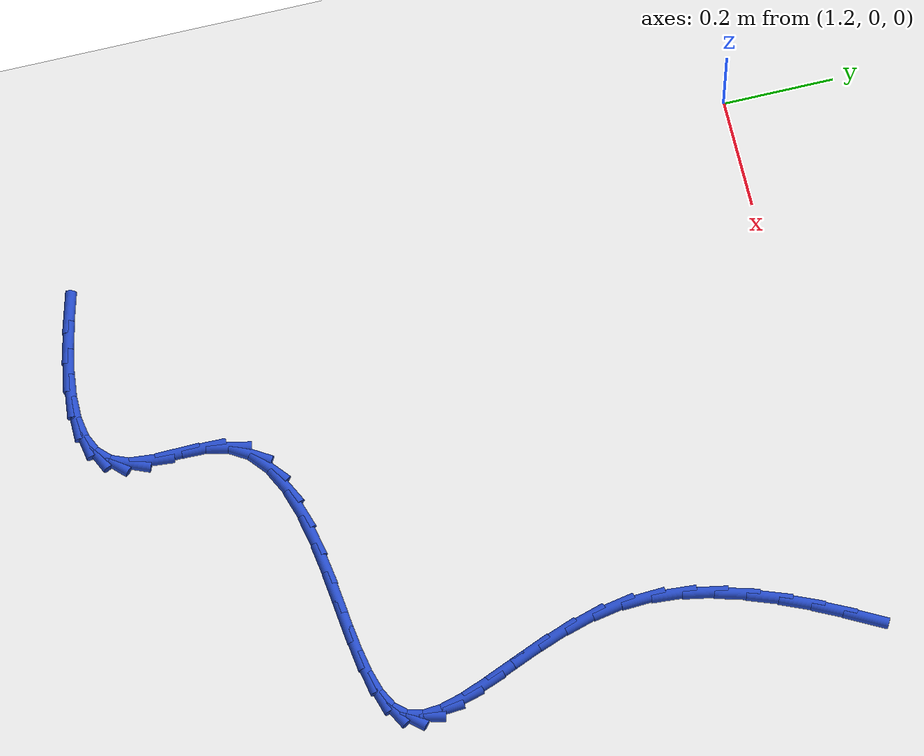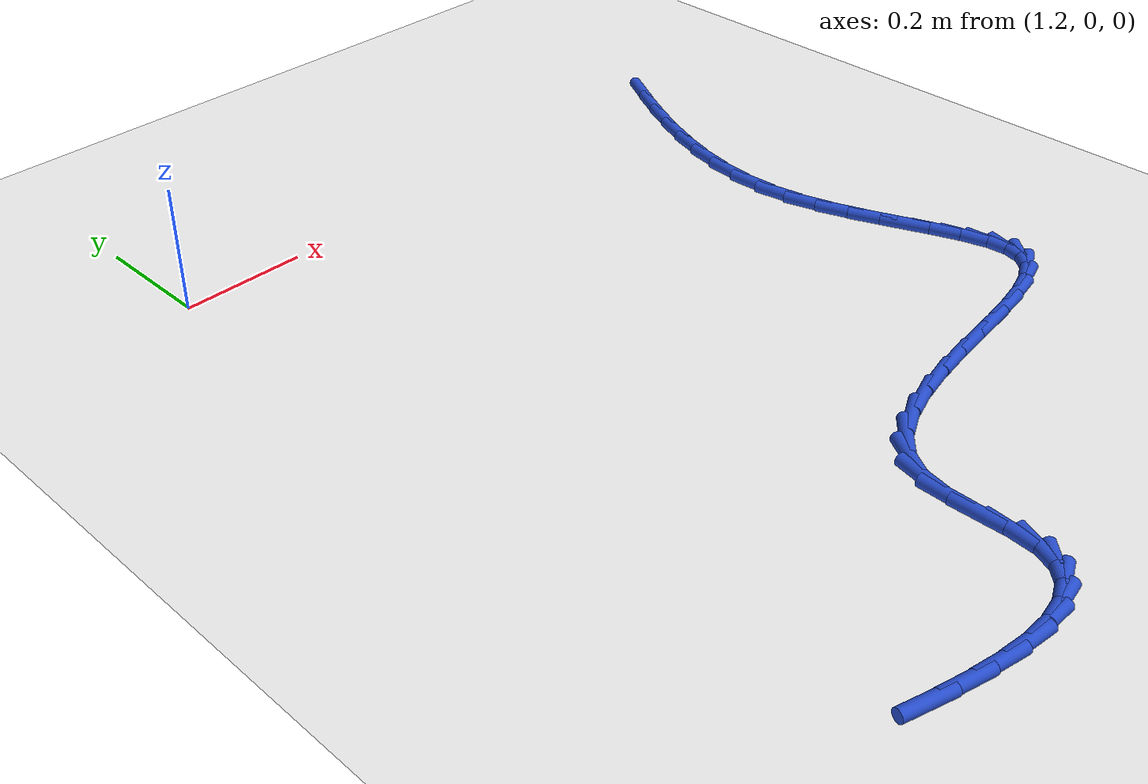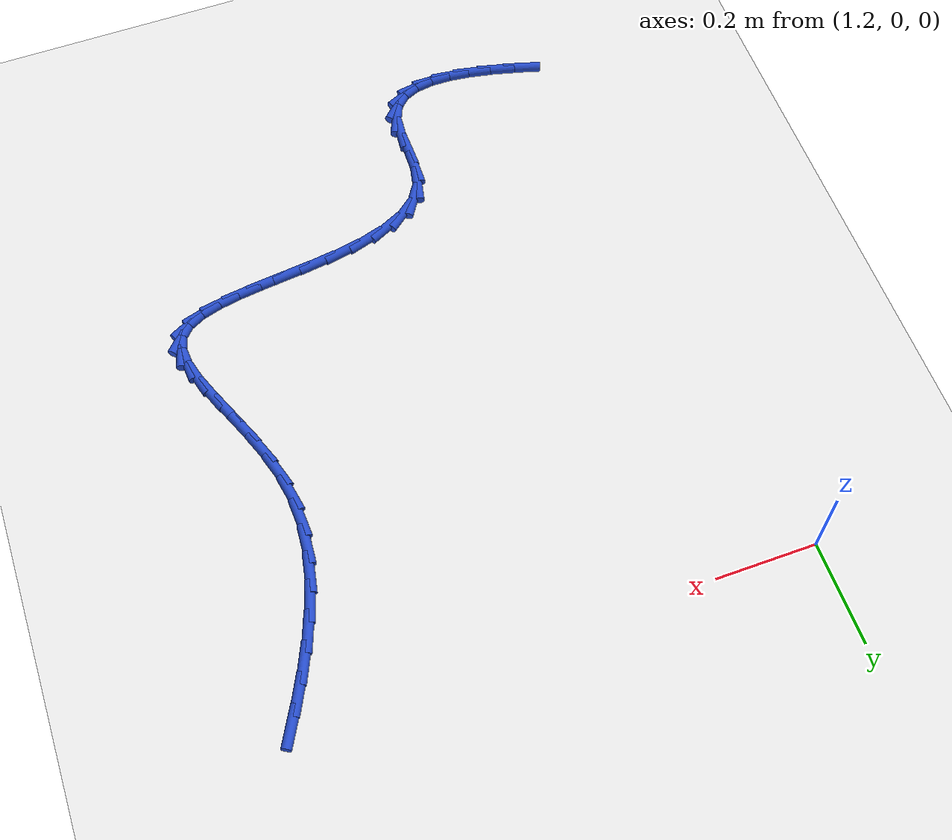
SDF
<sdf version="1.6">
 <world name="default">
  <model name="ground_plane">
   <static>1</static>
   <link name="link">
    <collision name="collision">
     <geometry><plane><normal>0 0 1</normal><size>100 100</size></plane></geometry>
     <surface><friction><ode><mu>100</mu><mu2>50</mu2></ode></friction></surface>
    </collision>
    <visual name="visual">
     <cast_shadows>0</cast_shadows>
     <geometry><plane><normal>0 0 1</normal><size>100 100</size></plane></geometry>
     <material>
      <script><uri>file://media/materials/scripts/gazebo.material</uri><name>Gazebo/WhiteGlow</name></script>
     </material>
    </visual>
   </link>
  </model>
  <model name="line">
   <link name="link_86">
    <pose>2.1945463842603115 -0.000606366182862722 0.01 0 1.57 1.0730740660798603</pose>
    <collision name="collision">
     <geometry><cylinder><radius>0.01</radius><length>0.08</length></cylinder></geometry>
    </collision>
    <visual name="visual">
     <material>
      <script><name>Gazebo/Blue</name><uri>file://media/materials/scripts/gazebo.material</uri></script>
     </material>
     <geometry><cylinder><radius>0.01</radius><length>0.08</length></cylinder></geometry>
    </visual>
   </link>
   <link name="link_87">
    <pose>2.167419787983631 -0.050531210718510064 0.01 0 1.57 1.1085020541007886</pose>
    <collision name="collision">
     <geometry><cylinder><radius>0.01</radius><length>0.08</length></cylinder></geometry>
    </collision>
    <visual name="visual">
     <material>
      <script><name>Gazebo/Blue</name><uri>file://media/materials/scripts/gazebo.material</uri></script>
     </material>
     <geometry><cylinder><radius>0.01</radius><length>0.08</length></cylinder></geometry>
    </visual>
   </link>
   <link name="link_88">
    <pose>2.1420147132523484 -0.10151373489827858 0.01 0 1.57 1.1560751038383181</pose>
    <collision name="collision">
     <geometry><cylinder><radius>0.01</radius><length>0.08</length></cylinder></geometry>
    </collision>
    <visual name="visual">
     <material>
      <script><name>Gazebo/Blue</name><uri>file://media/materials/scripts/gazebo.material</uri></script>
     </material>
     <geometry><cylinder><radius>0.01</radius><length>0.08</length></cylinder></geometry>
    </visual>
   </link>
   <link name="link_89">
    <pose>2.1191820332986784 -0.15337603019349053 0.01 0 1.57 1.2170746392446472</pose>
    <collision name="collision">
     <geometry><cylinder><radius>0.01</radius><length>0.08</length></cylinder></geometry>
    </collision>
    <visual name="visual">
     <material>
      <script><name>Gazebo/Blue</name><uri>file://media/materials/scripts/gazebo.material</uri></script>
     </material>
     <geometry><cylinder><radius>0.01</radius><length>0.08</length></cylinder></geometry>
    </visual>
   </link>
   <link name="link_90">
    <pose>2.099772621354834 -0.2059401880754652 0.01 0 1.57 1.2930672977358457</pose>
    <collision name="collision">
     <geometry><cylinder><radius>0.01</radius><length>0.08</length></cylinder></geometry>
    </collision>
    <visual name="visual">
     <material>
      <script><name>Gazebo/Blue</name><uri>file://media/materials/scripts/gazebo.material</uri></script>
     </material>
     <geometry><cylinder><radius>0.01</radius><length>0.08</length></cylinder></geometry>
    </visual>
   </link>
   <link name="link_91">
    <pose>2.084637350653027 -0.2590283000155247 0.01 0 1.57 1.3856047342201527</pose>
    <collision name="collision">
     <geometry><cylinder><radius>0.01</radius><length>0.08</length></cylinder></geometry>
    </collision>
    <visual name="visual">
     <material>
      <script><name>Gazebo/Blue</name><uri>file://media/materials/scripts/gazebo.material</uri></script>
     </material>
     <geometry><cylinder><radius>0.01</radius><length>0.08</length></cylinder></geometry>
    </visual>
   </link>
   <link name="link_92">
    <pose>2.0746270944254714 -0.3124624574849904 0.01 0 1.57 1.4956731181866083</pose>
    <collision name="collision">
     <geometry><cylinder><radius>0.01</radius><length>0.08</length></cylinder></geometry>
    </collision>
    <visual name="visual">
     <material>
      <script><name>Gazebo/Blue</name><uri>file://media/materials/scripts/gazebo.material</uri></script>
     </material>
     <geometry><cylinder><radius>0.01</radius><length>0.08</length></cylinder></geometry>
    </visual>
   </link>
   <link name="link_93">
    <pose>2.0705927259043793 -0.3660647519551835 0.01 0 1.57 -1.518739259783545</pose>
    <collision name="collision">
     <geometry><cylinder><radius>0.01</radius><length>0.08</length></cylinder></geometry>
    </collision>
    <visual name="visual">
     <material>
      <script><name>Gazebo/Blue</name><uri>file://media/materials/scripts/gazebo.material</uri></script>
     </material>
     <geometry><cylinder><radius>0.01</radius><length>0.08</length></cylinder></geometry>
    </visual>
   </link>
   <link name="link_94">
    <pose>2.073385118321964 -0.4196572748974262 0.01 0 1.57 -1.3842314266280167</pose>
    <collision name="collision">
     <geometry><cylinder><radius>0.01</radius><length>0.08</length></cylinder></geometry>
    </collision>
    <visual name="visual">
     <material>
      <script><name>Gazebo/Blue</name><uri>file://media/materials/scripts/gazebo.material</uri></script>
     </material>
     <geometry><cylinder><radius>0.01</radius><length>0.08</length></cylinder></geometry>
    </visual>
   </link>
   <link name="link_95">
    <pose>2.083453334374931 -0.4729959848737925 0.01 0 1.57 -1.279418233602411</pose>
    <collision name="collision">
     <geometry><cylinder><radius>0.01</radius><length>0.08</length></cylinder></geometry>
    </collision>
    <visual name="visual">
     <material>
      <script><name>Gazebo/Blue</name><uri>file://media/materials/scripts/gazebo.material</uri></script>
     </material>
     <geometry><cylinder><radius>0.01</radius><length>0.08</length></cylinder></geometry>
    </visual>
   </link>
   <link name="link_96">
    <pose>2.099200044052732 -0.5255000302056368 0.01 0 1.57 -1.2109950455202845</pose>
    <collision name="collision">
     <geometry><cylinder><radius>0.01</radius><length>0.08</length></cylinder></geometry>
    </collision>
    <visual name="visual">
     <material>
      <script><name>Gazebo/Blue</name><uri>file://media/materials/scripts/gazebo.material</uri></script>
     </material>
     <geometry><cylinder><radius>0.01</radius><length>0.08</length></cylinder></geometry>
    </visual>
   </link>
   <link name="link_97">
    <pose>2.1183780889790813 -0.5764816057212141 0.01 0 1.57 -1.175296134099487</pose>
    <collision name="collision">
     <geometry><cylinder><radius>0.01</radius><length>0.08</length></cylinder></geometry>
    </collision>
    <visual name="visual">
     <material>
      <script><name>Gazebo/Blue</name><uri>file://media/materials/scripts/gazebo.material</uri></script>
     </material>
     <geometry><cylinder><radius>0.01</radius><length>0.08</length></cylinder></geometry>
    </visual>
   </link>
   <link name="link_98">
    <pose>2.1387400441845634 -0.6252528623709367 0.01 0 1.57 -1.1725802625752417</pose>
    <collision name="collision">
     <geometry><cylinder><radius>0.01</radius><length>0.08</length></cylinder></geometry>
    </collision>
    <visual name="visual">
     <material>
      <script><name>Gazebo/Blue</name><uri>file://media/materials/scripts/gazebo.material</uri></script>
     </material>
     <geometry><cylinder><radius>0.01</radius><length>0.08</length></cylinder></geometry>
    </visual>
   </link>
   <link name="link_99">
    <pose>2.158038484699765 -0.6711259511052188 0.01 0 1.57 -1.209336298281432</pose>
    <collision name="collision">
     <geometry><cylinder><radius>0.01</radius><length>0.08</length></cylinder></geometry>
    </collision>
    <visual name="visual">
     <material>
      <script><name>Gazebo/Blue</name><uri>file://media/materials/scripts/gazebo.material</uri></script>
     </material>
     <geometry><cylinder><radius>0.01</radius><length>0.08</length></cylinder></geometry>
    </visual>
   </link>
   <link name="link_100">
    <pose>2.1740259855552693 -0.7134130228744712 0.01 0 1.57 -1.3030292994326418</pose>
    <collision name="collision">
     <geometry><cylinder><radius>0.01</radius><length>0.08</length></cylinder></geometry>
    </collision>
    <visual name="visual">
     <material>
      <script><name>Gazebo/Blue</name><uri>file://media/materials/scripts/gazebo.material</uri></script>
     </material>
     <geometry><cylinder><radius>0.01</radius><length>0.08</length></cylinder></geometry>
    </visual>
   </link>
   <link name="link_101">
    <pose>2.184455121781663 -0.7514262286291075 0.01 0 1.57 -1.4915908683314771</pose>
    <collision name="collision">
     <geometry><cylinder><radius>0.01</radius><length>0.08</length></cylinder></geometry>
    </collision>
    <visual name="visual">
     <material>
      <script><name>Gazebo/Blue</name><uri>file://media/materials/scripts/gazebo.material</uri></script>
     </material>
     <geometry><cylinder><radius>0.01</radius><length>0.08</length></cylinder></geometry>
    </visual>
   </link>
   <link name="link_102">
    <pose>2.1870784684095304 -0.7844777193195405 0.01 0 1.57 1.3060185319753976</pose>
    <collision name="collision">
     <geometry><cylinder><radius>0.01</radius><length>0.08</length></cylinder></geometry>
    </collision>
    <visual name="visual">
     <material>
      <script><name>Gazebo/Blue</name><uri>file://media/materials/scripts/gazebo.material</uri></script>
     </material>
     <geometry><cylinder><radius>0.01</radius><length>0.08</length></cylinder></geometry>
    </visual>
   </link>
   <link name="link_103">
    <pose>2.1796486004694566 -0.8118796458961829 0.01 0 1.57 0.8317705952721794</pose>
    <collision name="collision">
     <geometry><cylinder><radius>0.01</radius><length>0.08</length></cylinder></geometry>
    </collision>
    <visual name="visual">
     <material>
      <script><name>Gazebo/Blue</name><uri>file://media/materials/scripts/gazebo.material</uri></script>
     </material>
     <geometry><cylinder><radius>0.01</radius><length>0.08</length></cylinder></geometry>
    </visual>
   </link>
   <link name="link_104">
    <pose>2.1602987668952647 -0.8331127595565482 0.01 0 1.57 0.4771071912038997</pose>
    <collision name="collision">
     <geometry><cylinder><radius>0.01</radius><length>0.08</length></cylinder></geometry>
    </collision>
    <visual name="visual">
     <material>
      <script><name>Gazebo/Blue</name><uri>file://media/materials/scripts/gazebo.material</uri></script>
     </material>
     <geometry><cylinder><radius>0.01</radius><length>0.08</length></cylinder></geometry>
    </visual>
   </link>
   <link name="link_105">
    <pose>2.129854897404962 -0.8488503982284561 0.01 0 1.57 0.28132576874966747</pose>
    <collision name="collision">
     <geometry><cylinder><radius>0.01</radius><length>0.08</length></cylinder></geometry>
    </collision>
    <visual name="visual">
     <material>
      <script><name>Gazebo/Blue</name><uri>file://media/materials/scripts/gazebo.material</uri></script>
     </material>
     <geometry><cylinder><radius>0.01</radius><length>0.08</length></cylinder></geometry>
    </visual>
   </link>
   <link name="link_106">
    <pose>2.09030411192006 -0.8602801902956166 0.01 0 1.57 0.17625983426204944</pose>
    <collision name="collision">
     <geometry><cylinder><radius>0.01</radius><length>0.08</length></cylinder></geometry>
    </collision>
    <visual name="visual">
     <material>
      <script><name>Gazebo/Blue</name><uri>file://media/materials/scripts/gazebo.material</uri></script>
     </material>
     <geometry><cylinder><radius>0.01</radius><length>0.08</length></cylinder></geometry>
    </visual>
   </link>
   <link name="link_107">
    <pose>2.0436380970620003 -0.8685917867304436 0.01 0 1.57 0.12263133509250113</pose>
    <collision name="collision">
     <geometry><cylinder><radius>0.01</radius><length>0.08</length></cylinder></geometry>
    </collision>
    <visual name="visual">
     <material>
      <script><name>Gazebo/Blue</name><uri>file://media/materials/scripts/gazebo.material</uri></script>
     </material>
     <geometry><cylinder><radius>0.01</radius><length>0.08</length></cylinder></geometry>
    </visual>
   </link>
   <link name="link_108">
    <pose>1.991848539452224 -0.8749748385053504 0.01 0 1.57 0.10240838503690754</pose>
    <collision name="collision">
     <geometry><cylinder><radius>0.01</radius><length>0.08</length></cylinder></geometry>
    </collision>
    <visual name="visual">
     <material>
      <script><name>Gazebo/Blue</name><uri>file://media/materials/scripts/gazebo.material</uri></script>
     </material>
     <geometry><cylinder><radius>0.01</radius><length>0.08</length></cylinder></geometry>
    </visual>
   </link>
   <link name="link_109">
    <pose>1.9369271257121725 -0.8806189965927509 0.01 0 1.57 0.10829289213533846</pose>
    <collision name="collision">
     <geometry><cylinder><radius>0.01</radius><length>0.08</length></cylinder></geometry>
    </collision>
    <visual name="visual">
     <material>
      <script><name>Gazebo/Blue</name><uri>file://media/materials/scripts/gazebo.material</uri></script>
     </material>
     <geometry><cylinder><radius>0.01</radius><length>0.08</length></cylinder></geometry>
    </visual>
   </link>
   <link name="link_110">
    <pose>1.880865542463286 -0.8867139119650588 0.01 0 1.57 0.13920100551002376</pose>
    <collision name="collision">
     <geometry><cylinder><radius>0.01</radius><length>0.08</length></cylinder></geometry>
    </collision>
    <visual name="visual">
     <material>
      <script><name>Gazebo/Blue</name><uri>file://media/materials/scripts/gazebo.material</uri></script>
     </material>
     <geometry><cylinder><radius>0.01</radius><length>0.08</length></cylinder></geometry>
    </visual>
   </link>
   <link name="link_111">
    <pose>1.8256554763270074 -0.8944492355946875 0.01 0 1.57 0.1990844437430704</pose>
    <collision name="collision">
     <geometry><cylinder><radius>0.01</radius><length>0.08</length></cylinder></geometry>
    </collision>
    <visual name="visual">
     <material>
      <script><name>Gazebo/Blue</name><uri>file://media/materials/scripts/gazebo.material</uri></script>
     </material>
     <geometry><cylinder><radius>0.01</radius><length>0.08</length></cylinder></geometry>
    </visual>
   </link>
   <link name="link_112">
    <pose>1.773288613924777 -0.9050146184540502 0.01 0 1.57 0.297727510294519</pose>
    <collision name="collision">
     <geometry><cylinder><radius>0.01</radius><length>0.08</length></cylinder></geometry>
    </collision>
    <visual name="visual">
     <material>
      <script><name>Gazebo/Blue</name><uri>file://media/materials/scripts/gazebo.material</uri></script>
     </material>
     <geometry><cylinder><radius>0.01</radius><length>0.08</length></cylinder></geometry>
    </visual>
   </link>
   <link name="link_113">
    <pose>1.7257566418780357 -0.919599711515561 0.01 0 1.57 0.4526161519391164</pose>
    <collision name="collision">
     <geometry><cylinder><radius>0.01</radius><length>0.08</length></cylinder></geometry>
    </collision>
    <visual name="visual">
     <material>
      <script><name>Gazebo/Blue</name><uri>file://media/materials/scripts/gazebo.material</uri></script>
     </material>
     <geometry><cylinder><radius>0.01</radius><length>0.08</length></cylinder></geometry>
    </visual>
   </link>
   <link name="link_114">
    <pose>1.6850512468082244 -0.9393941657516331 0.01 0 1.57 0.687679973335966</pose>
    <collision name="collision">
     <geometry><cylinder><radius>0.01</radius><length>0.08</length></cylinder></geometry>
    </collision>
    <visual name="visual">
     <material>
      <script><name>Gazebo/Blue</name><uri>file://media/materials/scripts/gazebo.material</uri></script>
     </material>
     <geometry><cylinder><radius>0.01</radius><length>0.08</length></cylinder></geometry>
    </visual>
   </link>
   <link name="link_115">
    <pose>1.6531641153367844 -0.9655876321346811 0.01 0 1.57 1.0129775330760804</pose>
    <collision name="collision">
     <geometry><cylinder><radius>0.01</radius><length>0.08</length></cylinder></geometry>
    </collision>
    <visual name="visual">
     <material>
      <script><name>Gazebo/Blue</name><uri>file://media/materials/scripts/gazebo.material</uri></script>
     </material>
     <geometry><cylinder><radius>0.01</radius><length>0.08</length></cylinder></geometry>
    </visual>
   </link>
   <link name="link_116">
    <pose>1.632086934085158 -0.9993697616371175 0.01 0 1.57 1.3605635354170675</pose>
    <collision name="collision">
     <geometry><cylinder><radius>0.01</radius><length>0.08</length></cylinder></geometry>
    </collision>
    <visual name="visual">
     <material>
      <script><name>Gazebo/Blue</name><uri>file://media/materials/scripts/gazebo.material</uri></script>
     </material>
     <geometry><cylinder><radius>0.01</radius><length>0.08</length></cylinder></geometry>
    </visual>
   </link>
   <link name="link_117">
    <pose>1.6231199096495845 -1.041392349122935 0.01 0 1.57 1.553132958315199</pose>
    <collision name="collision">
     <geometry><cylinder><radius>0.01</radius><length>0.08</length></cylinder></geometry>
    </collision>
    <visual name="visual">
     <material>
      <script><name>Gazebo/Blue</name><uri>file://media/materials/scripts/gazebo.material</uri></script>
     </material>
     <geometry><cylinder><radius>0.01</radius><length>0.08</length></cylinder></geometry>
    </visual>
   </link>
   <link name="link_118">
    <pose>1.622292906103181 -1.088207742160149 0.01 0 1.57 -1.5509893236732117</pose>
    <collision name="collision">
     <geometry><cylinder><radius>0.01</radius><length>0.08</length></cylinder></geometry>
    </collision>
    <visual name="visual">
     <material>
      <script><name>Gazebo/Blue</name><uri>file://media/materials/scripts/gazebo.material</uri></script>
     </material>
     <geometry><cylinder><radius>0.01</radius><length>0.08</length></cylinder></geometry>
    </visual>
   </link>
   <link name="link_119">
    <pose>1.623209562321865 -1.1344810898509339 0.01 0 1.57 1.478369526519121</pose>
    <collision name="collision">
     <geometry><cylinder><radius>0.01</radius><length>0.08</length></cylinder></geometry>
    </collision>
    <visual name="visual">
     <material>
      <script><name>Gazebo/Blue</name><uri>file://media/materials/scripts/gazebo.material</uri></script>
     </material>
     <geometry><cylinder><radius>0.01</radius><length>0.08</length></cylinder></geometry>
    </visual>
   </link>
   <link name="link_120">
    <pose>1.6194657076161103 -1.1748718393472153 0.01 0 1.57 1.1739515279514678</pose>
    <collision name="collision">
     <geometry><cylinder><radius>0.01</radius><length>0.08</length></cylinder></geometry>
    </collision>
    <visual name="visual">
     <material>
      <script><name>Gazebo/Blue</name><uri>file://media/materials/scripts/gazebo.material</uri></script>
     </material>
     <geometry><cylinder><radius>0.01</radius><length>0.08</length></cylinder></geometry>
    </visual>
   </link>
   <link name="link_121">
    <pose>1.6065624908761813 -1.205661304169138 0.01 0 1.57 0.7787730716247107</pose>
    <collision name="collision">
     <geometry><cylinder><radius>0.01</radius><length>0.08</length></cylinder></geometry>
    </collision>
    <visual name="visual">
     <material>
      <script><name>Gazebo/Blue</name><uri>file://media/materials/scripts/gazebo.material</uri></script>
     </material>
     <geometry><cylinder><radius>0.01</radius><length>0.08</length></cylinder></geometry>
    </visual>
   </link>
   <link name="link_122">
    <pose>1.5847573084412276 -1.2271794613041704 0.01 0 1.57 0.4179248982721116</pose>
    <collision name="collision">
     <geometry><cylinder><radius>0.01</radius><length>0.08</length></cylinder></geometry>
    </collision>
    <visual name="visual">
     <material>
      <script><name>Gazebo/Blue</name><uri>file://media/materials/scripts/gazebo.material</uri></script>
     </material>
     <geometry><cylinder><radius>0.01</radius><length>0.08</length></cylinder></geometry>
    </visual>
   </link>
   <link name="link_123">
    <pose>1.5550374781728715 -1.240377619290298 0.01 0 1.57 0.1577484402809105</pose>
    <collision name="collision">
     <geometry><cylinder><radius>0.01</radius><length>0.08</length></cylinder></geometry>
    </collision>
    <visual name="visual">
     <material>
      <script><name>Gazebo/Blue</name><uri>file://media/materials/scripts/gazebo.material</uri></script>
     </material>
     <geometry><cylinder><radius>0.01</radius><length>0.08</length></cylinder></geometry>
    </visual>
   </link>
   <link name="link_124">
    <pose>1.5183903179327347 -1.2462070866655048 0.01 0 1.57 -0.01380409456265545</pose>
    <collision name="collision">
     <geometry><cylinder><radius>0.01</radius><length>0.08</length></cylinder></geometry>
    </collision>
    <visual name="visual">
     <material>
      <script><name>Gazebo/Blue</name><uri>file://media/materials/scripts/gazebo.material</uri></script>
     </material>
     <geometry><cylinder><radius>0.01</radius><length>0.08</length></cylinder></geometry>
    </visual>
   </link>
   <link name="link_125">
    <pose>1.4758031455824394 -1.2456191719677758 0.01 0 1.57 -0.12666374246653067</pose>
    <collision name="collision">
     <geometry><cylinder><radius>0.01</radius><length>0.08</length></cylinder></geometry>
    </collision>
    <visual name="visual">
     <material>
      <script><name>Gazebo/Blue</name><uri>file://media/materials/scripts/gazebo.material</uri></script>
     </material>
     <geometry><cylinder><radius>0.01</radius><length>0.08</length></cylinder></geometry>
    </visual>
   </link>
   <link name="link_126">
    <pose>1.428263278983606 -1.2395651837350943 0.01 0 1.57 -0.20238823856352897</pose>
    <collision name="collision">
     <geometry><cylinder><radius>0.01</radius><length>0.08</length></cylinder></geometry>
    </collision>
    <visual name="visual">
     <material>
      <script><name>Gazebo/Blue</name><uri>file://media/materials/scripts/gazebo.material</uri></script>
     </material>
     <geometry><cylinder><radius>0.01</radius><length>0.08</length></cylinder></geometry>
    </visual>
   </link>
   <link name="link_127">
    <pose>1.376758035997859 -1.2289964305054455 0.01 0 1.57 -0.25379292036284984</pose>
    <collision name="collision">
     <geometry><cylinder><radius>0.01</radius><length>0.08</length></cylinder></geometry>
    </collision>
    <visual name="visual">
     <material>
      <script><name>Gazebo/Blue</name><uri>file://media/materials/scripts/gazebo.material</uri></script>
     </material>
     <geometry><cylinder><radius>0.01</radius><length>0.08</length></cylinder></geometry>
    </visual>
   </link>
   <link name="link_128">
    <pose>1.3222747344868189 -1.2148642208168139 0.01 0 1.57 -0.28823951175158025</pose>
    <collision name="collision">
     <geometry><cylinder><radius>0.01</radius><length>0.08</length></cylinder></geometry>
    </collision>
    <visual name="visual">
     <material>
      <script><name>Gazebo/Blue</name><uri>file://media/materials/scripts/gazebo.material</uri></script>
     </material>
     <geometry><cylinder><radius>0.01</radius><length>0.08</length></cylinder></geometry>
    </visual>
   </link>
  </model>
 </world>
</sdf>
